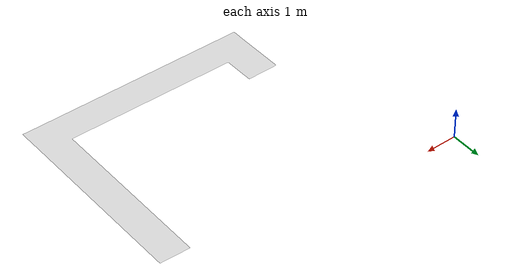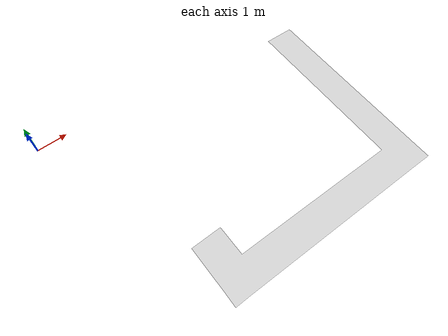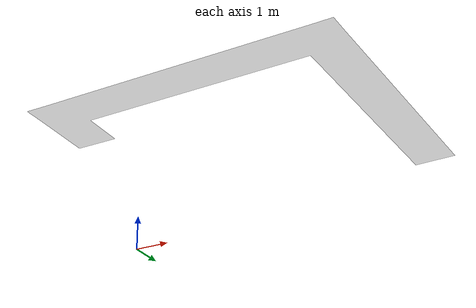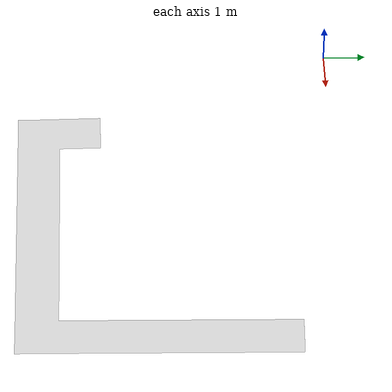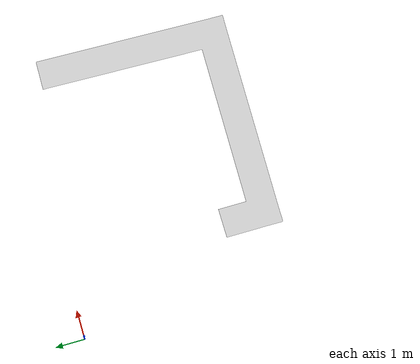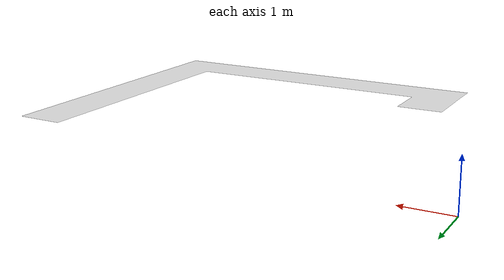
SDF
<?xml version='1.0' encoding='utf-8'?>
<sdf version="1.7">
  <model name="navgraph_2">
    <static>true</static>
    <link name="navgraph_2">
      <visual name="navgraph_2">
        <geometry>
          <mesh>
            <uri>meshes/navgraph_2.obj</uri>
          </mesh>
        </geometry>
        <transparency>0.5</transparency>
      </visual>
      <pose>0 0 0 0 0 0</pose>
    </link>
  </model>
</sdf>
